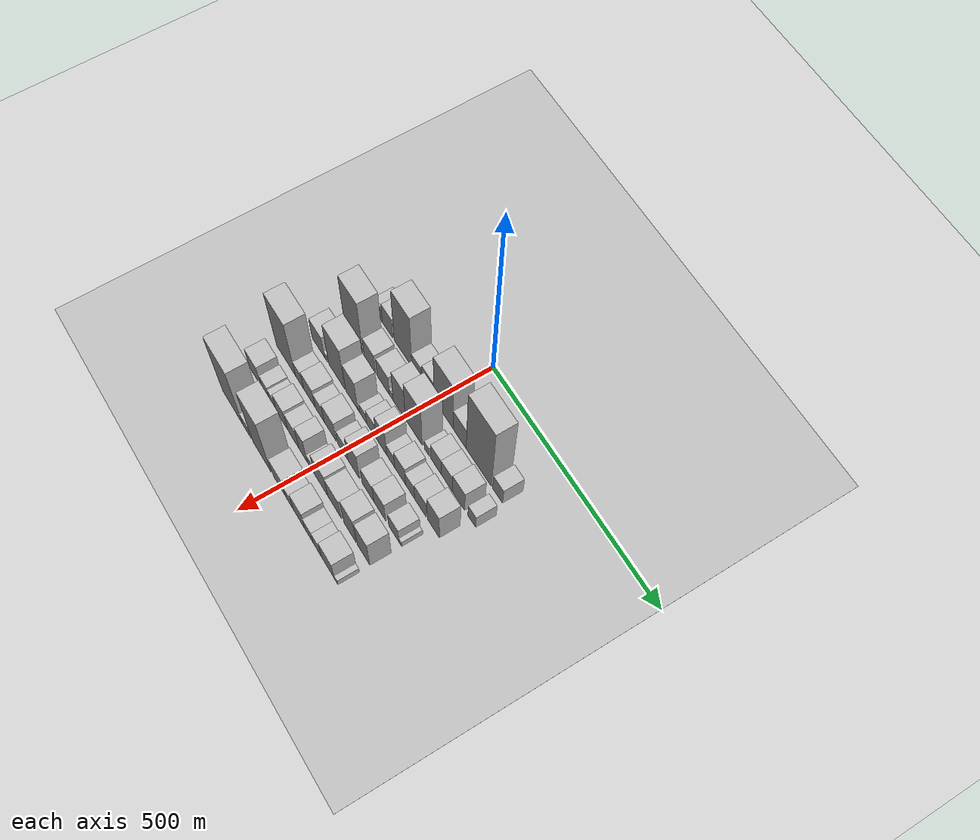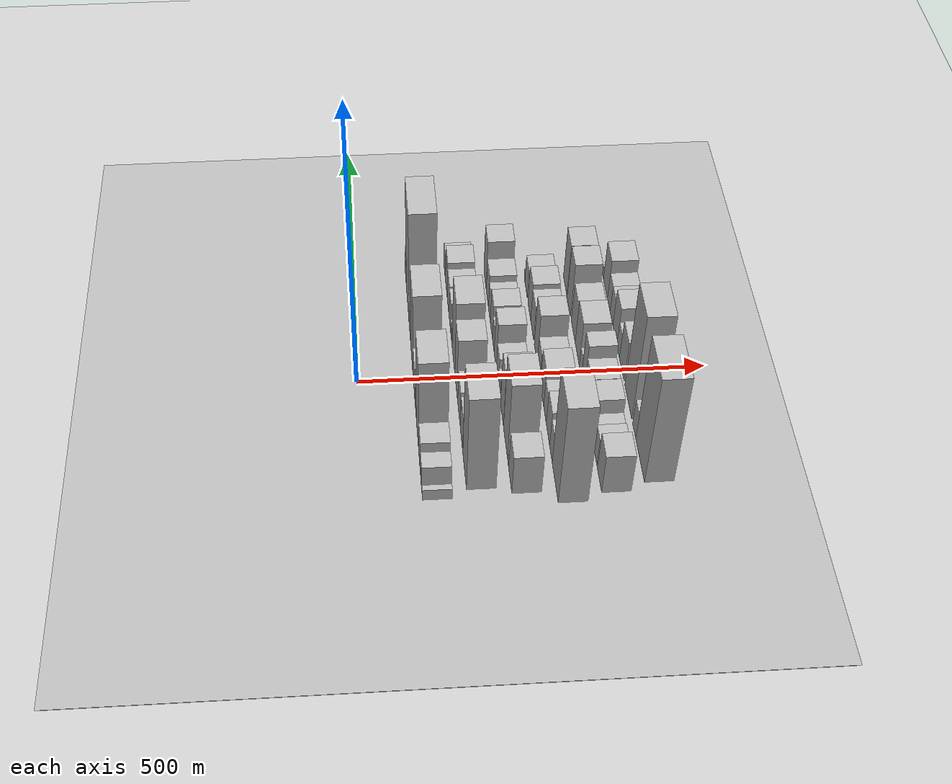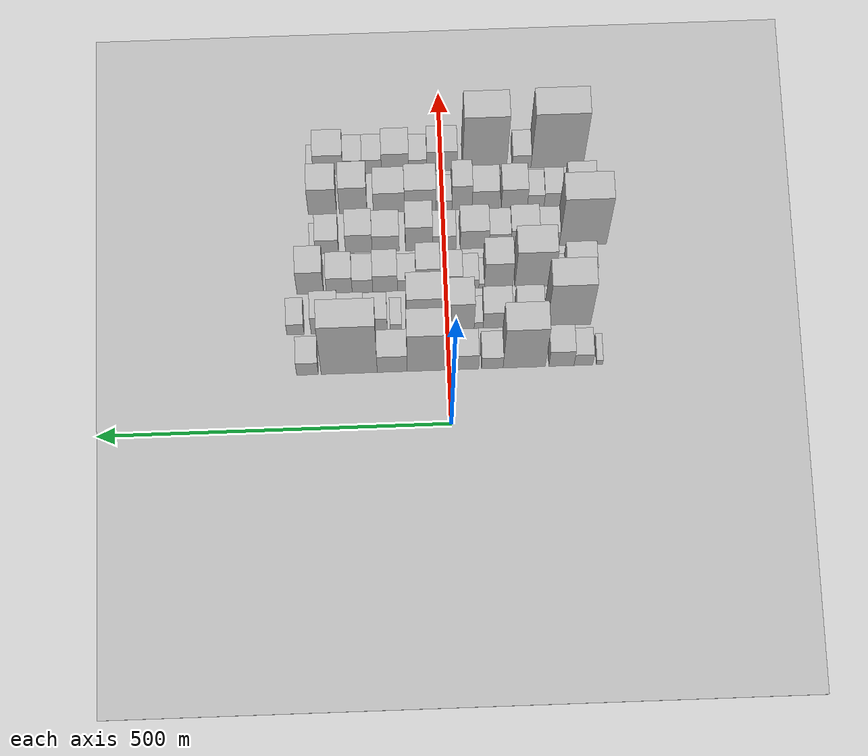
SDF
<sdf version="1.6">
 <world name="default">
  <include><name>ground_plane_1</name><uri>model://HANNAS_ground_plane</uri></include>
  <include>
   <name>ground_plane_2</name>
   <uri>model://HANNAS_ground_plane</uri>
   <pose>100 0 0  0 0 0</pose>
  </include>
  <model name="building_23">
   <static>1</static>
   <pose>100.0000 -211.9907 0 0.000000 0.000000 0.000000</pose>
   <link name="link">
    <pose>0 0 10.50 0 0 0</pose>
    <collision name="collision"><geometry><box><size>40.0000 9.0143 21.0000</size></box></geometry></collision>
    <visual name="visual">
     <cast_shadows>0</cast_shadows>
     <geometry><box><size>40.0000 9.0143 21.0000</size></box></geometry>
     <material>
      <script>
       <uri>model://HANNAS_wall/materials/scripts</uri>
       <uri>model://HANNAS_wall/materials/textures</uri>
       <name>vrc/HANNAS_wall</name>
      </script>
     </material>
    </visual>
   </link>
  </model>
  <model name="building_24">
   <static>1</static>
   <pose>100.0000 -189.1800 0 0.000000 0.000000 0.000000</pose>
   <link name="link">
    <pose>0 0 25.50 0 0 0</pose>
    <collision name="collision"><geometry><box><size>40.0000 26.6072 51.0000</size></box></geometry></collision>
    <visual name="visual">
     <cast_shadows>0</cast_shadows>
     <geometry><box><size>40.0000 26.6072 51.0000</size></box></geometry>
     <material>
      <script>
       <uri>model://HANNAS_wall/materials/scripts</uri>
       <uri>model://HANNAS_wall/materials/textures</uri>
       <name>vrc/HANNAS_wall</name>
      </script>
     </material>
    </visual>
   </link>
  </model>
  <model name="building_25">
   <static>1</static>
   <pose>100.0000 -158.0435 0 0.000000 0.000000 0.000000</pose>
   <link name="link">
    <pose>0 0 34.50 0 0 0</pose>
    <collision name="collision"><geometry><box><size>40.0000 35.6658 69.0000</size></box></geometry></collision>
    <visual name="visual">
     <cast_shadows>0</cast_shadows>
     <geometry><box><size>40.0000 35.6658 69.0000</size></box></geometry>
     <material>
      <script>
       <uri>model://HANNAS_wall/materials/scripts</uri>
       <uri>model://HANNAS_wall/materials/textures</uri>
       <name>vrc/HANNAS_wall</name>
      </script>
     </material>
    </visual>
   </link>
  </model>
  <model name="building_26">
   <static>1</static>
   <pose>100.0000 -105.2932 0 0.000000 0.000000 0.000000</pose>
   <link name="link">
    <pose>0 0 90.00 0 0 0</pose>
    <collision name="collision"><geometry><box><size>40.0000 59.8347 180.0000</size></box></geometry></collision>
    <visual name="visual">
     <cast_shadows>0</cast_shadows>
     <geometry><box><size>40.0000 59.8347 180.0000</size></box></geometry>
     <material>
      <script>
       <uri>model://HANNAS_wall/materials/scripts</uri>
       <uri>model://HANNAS_wall/materials/textures</uri>
       <name>vrc/HANNAS_wall</name>
      </script>
     </material>
    </visual>
   </link>
  </model>
  <model name="building_27">
   <static>1</static>
   <pose>100.0000 -60.1227 0 0.000000 0.000000 0.000000</pose>
   <link name="link">
    <pose>0 0 25.50 0 0 0</pose>
    <collision name="collision"><geometry><box><size>40.0000 30.5063 51.0000</size></box></geometry></collision>
    <visual name="visual">
     <cast_shadows>0</cast_shadows>
     <geometry><box><size>40.0000 30.5063 51.0000</size></box></geometry>
     <material>
      <script>
       <uri>model://HANNAS_wall/materials/scripts</uri>
       <uri>model://HANNAS_wall/materials/textures</uri>
       <name>vrc/HANNAS_wall</name>
      </script>
     </material>
    </visual>
   </link>
  </model>
  <model name="building_28">
   <static>1</static>
   <pose>100.0000 -21.3664 0 0.000000 0.000000 0.000000</pose>
   <link name="link">
    <pose>0 0 33.00 0 0 0</pose>
    <collision name="collision"><geometry><box><size>40.0000 39.0064 66.0000</size></box></geometry></collision>
    <visual name="visual">
     <cast_shadows>0</cast_shadows>
     <geometry><box><size>40.0000 39.0064 66.0000</size></box></geometry>
     <material>
      <script>
       <uri>model://HANNAS_wall/materials/scripts</uri>
       <uri>model://HANNAS_wall/materials/textures</uri>
       <name>vrc/HANNAS_wall</name>
      </script>
     </material>
    </visual>
   </link>
  </model>
  <model name="building_29">
   <static>1</static>
   <pose>100.0000 29.2411 0 0.000000 0.000000 0.000000</pose>
   <link name="link">
    <pose>0 0 84.00 0 0 0</pose>
    <collision name="collision"><geometry><box><size>40.0000 62.2086 168.0000</size></box></geometry></collision>
    <visual name="visual">
     <cast_shadows>0</cast_shadows>
     <geometry><box><size>40.0000 62.2086 168.0000</size></box></geometry>
     <material>
      <script>
       <uri>model://HANNAS_wall/materials/scripts</uri>
       <uri>model://HANNAS_wall/materials/textures</uri>
       <name>vrc/HANNAS_wall</name>
      </script>
     </material>
    </visual>
   </link>
  </model>
  <model name="building_30">
   <static>1</static>
   <pose>100.0000 81.5570 0 0.000000 0.000000 0.000000</pose>
   <link name="link">
    <pose>0 0 37.50 0 0 0</pose>
    <collision name="collision"><geometry><box><size>40.0000 42.4233 75.0000</size></box></geometry></collision>
    <visual name="visual">
     <cast_shadows>0</cast_shadows>
     <geometry><box><size>40.0000 42.4233 75.0000</size></box></geometry>
     <material>
      <script>
       <uri>model://HANNAS_wall/materials/scripts</uri>
       <uri>model://HANNAS_wall/materials/textures</uri>
       <name>vrc/HANNAS_wall</name>
      </script>
     </material>
    </visual>
   </link>
  </model>
  <model name="building_31">
   <static>1</static>
   <pose>100.0000 142.4309 0 0.000000 0.000000 0.000000</pose>
   <link name="link">
    <pose>0 0 111.00 0 0 0</pose>
    <collision name="collision"><geometry><box><size>40.0000 79.3245 222.0000</size></box></geometry></collision>
    <visual name="visual">
     <cast_shadows>0</cast_shadows>
     <geometry><box><size>40.0000 79.3245 222.0000</size></box></geometry>
     <material>
      <script>
       <uri>model://HANNAS_wall/materials/scripts</uri>
       <uri>model://HANNAS_wall/materials/textures</uri>
       <name>vrc/HANNAS_wall</name>
      </script>
     </material>
    </visual>
   </link>
  </model>
  <model name="building_32">
   <static>1</static>
   <pose>100.0000 201.3452 0 0.000000 0.000000 0.000000</pose>
   <link name="link">
    <pose>0 0 28.50 0 0 0</pose>
    <collision name="collision"><geometry><box><size>40.0000 30.5040 57.0000</size></box></geometry></collision>
    <visual name="visual">
     <cast_shadows>0</cast_shadows>
     <geometry><box><size>40.0000 30.5040 57.0000</size></box></geometry>
     <material>
      <script>
       <uri>model://HANNAS_wall/materials/scripts</uri>
       <uri>model://HANNAS_wall/materials/textures</uri>
       <name>vrc/HANNAS_wall</name>
      </script>
     </material>
    </visual>
   </link>
  </model>
  <model name="building_75">
   <static>1</static>
   <pose>160.0000 -171.7426 0 0.000000 0.000000 0.000000</pose>
   <link name="link">
    <pose>0 0 91.50 0 0 0</pose>
    <collision name="collision"><geometry><box><size>40.0000 61.8753 183.0000</size></box></geometry></collision>
    <visual name="visual">
     <cast_shadows>0</cast_shadows>
     <geometry><box><size>40.0000 61.8753 183.0000</size></box></geometry>
     <material>
      <script>
       <uri>model://HANNAS_wall/materials/scripts</uri>
       <uri>model://HANNAS_wall/materials/textures</uri>
       <name>vrc/HANNAS_wall</name>
      </script>
     </material>
    </visual>
   </link>
  </model>
  <model name="building_76">
   <static>1</static>
   <pose>160.0000 -116.3303 0 0.000000 0.000000 0.000000</pose>
   <link name="link">
    <pose>0 0 34.50 0 0 0</pose>
    <collision name="collision"><geometry><box><size>40.0000 38.9494 69.0000</size></box></geometry></collision>
    <visual name="visual">
     <cast_shadows>0</cast_shadows>
     <geometry><box><size>40.0000 38.9494 69.0000</size></box></geometry>
     <material>
      <script>
       <uri>model://HANNAS_wall/materials/scripts</uri>
       <uri>model://HANNAS_wall/materials/textures</uri>
       <name>vrc/HANNAS_wall</name>
      </script>
     </material>
    </visual>
   </link>
  </model>
  <model name="building_77">
   <static>1</static>
   <pose>160.0000 -70.2654 0 0.000000 0.000000 0.000000</pose>
   <link name="link">
    <pose>0 0 34.50 0 0 0</pose>
    <collision name="collision"><geometry><box><size>40.0000 41.1803 69.0000</size></box></geometry></collision>
    <visual name="visual">
     <cast_shadows>0</cast_shadows>
     <geometry><box><size>40.0000 41.1803 69.0000</size></box></geometry>
     <material>
      <script>
       <uri>model://HANNAS_wall/materials/scripts</uri>
       <uri>model://HANNAS_wall/materials/textures</uri>
       <name>vrc/HANNAS_wall</name>
      </script>
     </material>
    </visual>
   </link>
  </model>
  <model name="building_78">
   <static>1</static>
   <pose>160.0000 -43.2886 0 0.000000 0.000000 0.000000</pose>
   <link name="link">
    <pose>0 0 13.50 0 0 0</pose>
    <collision name="collision"><geometry><box><size>40.0000 12.7735 27.0000</size></box></geometry></collision>
    <visual name="visual">
     <cast_shadows>0</cast_shadows>
     <geometry><box><size>40.0000 12.7735 27.0000</size></box></geometry>
     <material>
      <script>
       <uri>model://HANNAS_wall/materials/scripts</uri>
       <uri>model://HANNAS_wall/materials/textures</uri>
       <name>vrc/HANNAS_wall</name>
      </script>
     </material>
    </visual>
   </link>
  </model>
  <model name="building_79">
   <static>1</static>
   <pose>160.0000 -16.5319 0 0.000000 0.000000 0.000000</pose>
   <link name="link">
    <pose>0 0 57.00 0 0 0</pose>
    <collision name="collision"><geometry><box><size>40.0000 40.7398 114.0000</size></box></geometry></collision>
    <visual name="visual">
     <cast_shadows>0</cast_shadows>
     <geometry><box><size>40.0000 40.7398 114.0000</size></box></geometry>
     <material>
      <script>
       <uri>model://HANNAS_wall/materials/scripts</uri>
       <uri>model://HANNAS_wall/materials/textures</uri>
       <name>vrc/HANNAS_wall</name>
      </script>
     </material>
    </visual>
   </link>
  </model>
  <model name="building_80">
   <static>1</static>
   <pose>160.0000 31.4067 0 0.000000 0.000000 0.000000</pose>
   <link name="link">
    <pose>0 0 72.00 0 0 0</pose>
    <collision name="collision"><geometry><box><size>40.0000 55.1375 144.0000</size></box></geometry></collision>
    <visual name="visual">
     <cast_shadows>0</cast_shadows>
     <geometry><box><size>40.0000 55.1375 144.0000</size></box></geometry>
     <material>
      <script>
       <uri>model://HANNAS_wall/materials/scripts</uri>
       <uri>model://HANNAS_wall/materials/textures</uri>
       <name>vrc/HANNAS_wall</name>
      </script>
     </material>
    </visual>
   </link>
  </model>
  <model name="building_81">
   <static>1</static>
   <pose>160.0000 74.2424 0 0.000000 0.000000 0.000000</pose>
   <link name="link">
    <pose>0 0 16.50 0 0 0</pose>
    <collision name="collision"><geometry><box><size>40.0000 16.5340 33.0000</size></box></geometry></collision>
    <visual name="visual">
     <cast_shadows>0</cast_shadows>
     <geometry><box><size>40.0000 16.5340 33.0000</size></box></geometry>
     <material>
      <script>
       <uri>model://HANNAS_wall/materials/scripts</uri>
       <uri>model://HANNAS_wall/materials/textures</uri>
       <name>vrc/HANNAS_wall</name>
      </script>
     </material>
    </visual>
   </link>
  </model>
  <model name="building_82">
   <static>1</static>
   <pose>160.0000 103.2470 0 0.000000 0.000000 0.000000</pose>
   <link name="link">
    <pose>0 0 30.00 0 0 0</pose>
    <collision name="collision"><geometry><box><size>40.0000 33.4752 60.0000</size></box></geometry></collision>
    <visual name="visual">
     <cast_shadows>0</cast_shadows>
     <geometry><box><size>40.0000 33.4752 60.0000</size></box></geometry>
     <material>
      <script>
       <uri>model://HANNAS_wall/materials/scripts</uri>
       <uri>model://HANNAS_wall/materials/textures</uri>
       <name>vrc/HANNAS_wall</name>
      </script>
     </material>
    </visual>
   </link>
  </model>
  <model name="building_83">
   <static>1</static>
   <pose>160.0000 138.2961 0 0.000000 0.000000 0.000000</pose>
   <link name="link">
    <pose>0 0 31.50 0 0 0</pose>
    <collision name="collision"><geometry><box><size>40.0000 36.6229 63.0000</size></box></geometry></collision>
    <visual name="visual">
     <cast_shadows>0</cast_shadows>
     <geometry><box><size>40.0000 36.6229 63.0000</size></box></geometry>
     <material>
      <script>
       <uri>model://HANNAS_wall/materials/scripts</uri>
       <uri>model://HANNAS_wall/materials/textures</uri>
       <name>vrc/HANNAS_wall</name>
      </script>
     </material>
    </visual>
   </link>
  </model>
  <model name="building_84">
   <static>1</static>
   <pose>160.0000 175.6414 0 0.000000 0.000000 0.000000</pose>
   <link name="link">
    <pose>0 0 37.50 0 0 0</pose>
    <collision name="collision"><geometry><box><size>40.0000 38.0677 75.0000</size></box></geometry></collision>
    <visual name="visual">
     <cast_shadows>0</cast_shadows>
     <geometry><box><size>40.0000 38.0677 75.0000</size></box></geometry>
     <material>
      <script>
       <uri>model://HANNAS_wall/materials/scripts</uri>
       <uri>model://HANNAS_wall/materials/textures</uri>
       <name>vrc/HANNAS_wall</name>
      </script>
     </material>
    </visual>
   </link>
  </model>
  <model name="building_85">
   <static>1</static>
   <pose>160.0000 216.8827 0 0.000000 0.000000 0.000000</pose>
   <link name="link">
    <pose>0 0 24.00 0 0 0</pose>
    <collision name="collision"><geometry><box><size>40.0000 24.4150 48.0000</size></box></geometry></collision>
    <visual name="visual">
     <cast_shadows>0</cast_shadows>
     <geometry><box><size>40.0000 24.4150 48.0000</size></box></geometry>
     <material>
      <script>
       <uri>model://HANNAS_wall/materials/scripts</uri>
       <uri>model://HANNAS_wall/materials/textures</uri>
       <name>vrc/HANNAS_wall</name>
      </script>
     </material>
    </visual>
   </link>
  </model>
  <model name="building_130">
   <static>1</static>
   <pose>220.0000 -191.2444 0 0.000000 0.000000 0.000000</pose>
   <link name="link">
    <pose>0 0 37.50 0 0 0</pose>
    <collision name="collision"><geometry><box><size>40.0000 43.1221 75.0000</size></box></geometry></collision>
    <visual name="visual">
     <cast_shadows>0</cast_shadows>
     <geometry><box><size>40.0000 43.1221 75.0000</size></box></geometry>
     <material>
      <script>
       <uri>model://HANNAS_wall/materials/scripts</uri>
       <uri>model://HANNAS_wall/materials/textures</uri>
       <name>vrc/HANNAS_wall</name>
      </script>
     </material>
    </visual>
   </link>
  </model>
  <model name="building_131">
   <static>1</static>
   <pose>220.0000 -164.2995 0 0.000000 0.000000 0.000000</pose>
   <link name="link">
    <pose>0 0 12.00 0 0 0</pose>
    <collision name="collision"><geometry><box><size>40.0000 10.7676 24.0000</size></box></geometry></collision>
    <visual name="visual">
     <cast_shadows>0</cast_shadows>
     <geometry><box><size>40.0000 10.7676 24.0000</size></box></geometry>
     <material>
      <script>
       <uri>model://HANNAS_wall/materials/scripts</uri>
       <uri>model://HANNAS_wall/materials/textures</uri>
       <name>vrc/HANNAS_wall</name>
      </script>
     </material>
    </visual>
   </link>
  </model>
  <model name="building_132">
   <static>1</static>
   <pose>220.0000 -125.7741 0 0.000000 0.000000 0.000000</pose>
   <link name="link">
    <pose>0 0 75.00 0 0 0</pose>
    <collision name="collision"><geometry><box><size>40.0000 56.2834 150.0000</size></box></geometry></collision>
    <visual name="visual">
     <cast_shadows>0</cast_shadows>
     <geometry><box><size>40.0000 56.2834 150.0000</size></box></geometry>
     <material>
      <script>
       <uri>model://HANNAS_wall/materials/scripts</uri>
       <uri>model://HANNAS_wall/materials/textures</uri>
       <name>vrc/HANNAS_wall</name>
      </script>
     </material>
    </visual>
   </link>
  </model>
  <model name="building_133">
   <static>1</static>
   <pose>220.0000 -74.2820 0 0.000000 0.000000 0.000000</pose>
   <link name="link">
    <pose>0 0 52.50 0 0 0</pose>
    <collision name="collision"><geometry><box><size>40.0000 40.7007 105.0000</size></box></geometry></collision>
    <visual name="visual">
     <cast_shadows>0</cast_shadows>
     <geometry><box><size>40.0000 40.7007 105.0000</size></box></geometry>
     <material>
      <script>
       <uri>model://HANNAS_wall/materials/scripts</uri>
       <uri>model://HANNAS_wall/materials/textures</uri>
       <name>vrc/HANNAS_wall</name>
      </script>
     </material>
    </visual>
   </link>
  </model>
  <model name="building_134">
   <static>1</static>
   <pose>220.0000 -50.0103 0 0.000000 0.000000 0.000000</pose>
   <link name="link">
    <pose>0 0 9.00 0 0 0</pose>
    <collision name="collision"><geometry><box><size>40.0000 7.8428 18.0000</size></box></geometry></collision>
    <visual name="visual">
     <cast_shadows>0</cast_shadows>
     <geometry><box><size>40.0000 7.8428 18.0000</size></box></geometry>
     <material>
      <script>
       <uri>model://HANNAS_wall/materials/scripts</uri>
       <uri>model://HANNAS_wall/materials/textures</uri>
       <name>vrc/HANNAS_wall</name>
      </script>
     </material>
    </visual>
   </link>
  </model>
  <model name="building_135">
   <static>1</static>
   <pose>220.0000 -34.4745 0 0.000000 0.000000 0.000000</pose>
   <link name="link">
    <pose>0 0 19.50 0 0 0</pose>
    <collision name="collision"><geometry><box><size>40.0000 23.2288 39.0000</size></box></geometry></collision>
    <visual name="visual">
     <cast_shadows>0</cast_shadows>
     <geometry><box><size>40.0000 23.2288 39.0000</size></box></geometry>
     <material>
      <script>
       <uri>model://HANNAS_wall/materials/scripts</uri>
       <uri>model://HANNAS_wall/materials/textures</uri>
       <name>vrc/HANNAS_wall</name>
      </script>
     </material>
    </visual>
   </link>
  </model>
  <model name="building_136">
   <static>1</static>
   <pose>220.0000 -6.7000 0 0.000000 0.000000 0.000000</pose>
   <link name="link">
    <pose>0 0 28.50 0 0 0</pose>
    <collision name="collision"><geometry><box><size>40.0000 32.3200 57.0000</size></box></geometry></collision>
    <visual name="visual">
     <cast_shadows>0</cast_shadows>
     <geometry><box><size>40.0000 32.3200 57.0000</size></box></geometry>
     <material>
      <script>
       <uri>model://HANNAS_wall/materials/scripts</uri>
       <uri>model://HANNAS_wall/materials/textures</uri>
       <name>vrc/HANNAS_wall</name>
      </script>
     </material>
    </visual>
   </link>
  </model>
  <model name="building_137">
   <static>1</static>
   <pose>220.0000 26.6007 0 0.000000 0.000000 0.000000</pose>
   <link name="link">
    <pose>0 0 46.50 0 0 0</pose>
    <collision name="collision"><geometry><box><size>40.0000 34.2815 93.0000</size></box></geometry></collision>
    <visual name="visual">
     <cast_shadows>0</cast_shadows>
     <geometry><box><size>40.0000 34.2815 93.0000</size></box></geometry>
     <material>
      <script>
       <uri>model://HANNAS_wall/materials/scripts</uri>
       <uri>model://HANNAS_wall/materials/textures</uri>
       <name>vrc/HANNAS_wall</name>
      </script>
     </material>
    </visual>
   </link>
  </model>
  <model name="building_138">
   <static>1</static>
   <pose>220.0000 56.8906 0 0.000000 0.000000 0.000000</pose>
   <link name="link">
    <pose>0 0 24.00 0 0 0</pose>
    <collision name="collision"><geometry><box><size>40.0000 26.2984 48.0000</size></box></geometry></collision>
    <visual name="visual">
     <cast_shadows>0</cast_shadows>
     <geometry><box><size>40.0000 26.2984 48.0000</size></box></geometry>
     <material>
      <script>
       <uri>model://HANNAS_wall/materials/scripts</uri>
       <uri>model://HANNAS_wall/materials/textures</uri>
       <name>vrc/HANNAS_wall</name>
      </script>
     </material>
    </visual>
   </link>
  </model>
  <model name="building_139">
   <static>1</static>
   <pose>220.0000 87.6711 0 0.000000 0.000000 0.000000</pose>
   <link name="link">
    <pose>0 0 34.50 0 0 0</pose>
    <collision name="collision"><geometry><box><size>40.0000 35.2625 69.0000</size></box></geometry></collision>
    <visual name="visual">
     <cast_shadows>0</cast_shadows>
     <geometry><box><size>40.0000 35.2625 69.0000</size></box></geometry>
     <material>
      <script>
       <uri>model://HANNAS_wall/materials/scripts</uri>
       <uri>model://HANNAS_wall/materials/textures</uri>
       <name>vrc/HANNAS_wall</name>
      </script>
     </material>
    </visual>
   </link>
  </model>
  <model name="building_140">
   <static>1</static>
   <pose>220.0000 120.0035 0 0.000000 0.000000 0.000000</pose>
   <link name="link">
    <pose>0 0 27.00 0 0 0</pose>
    <collision name="collision"><geometry><box><size>40.0000 29.4024 54.0000</size></box></geometry></collision>
    <visual name="visual">
     <cast_shadows>0</cast_shadows>
     <geometry><box><size>40.0000 29.4024 54.0000</size></box></geometry>
     <material>
      <script>
       <uri>model://HANNAS_wall/materials/scripts</uri>
       <uri>model://HANNAS_wall/materials/textures</uri>
       <name>vrc/HANNAS_wall</name>
      </script>
     </material>
    </visual>
   </link>
  </model>
  <model name="building_141">
   <static>1</static>
   <pose>220.0000 153.0746 0 0.000000 0.000000 0.000000</pose>
   <link name="link">
    <pose>0 0 33.00 0 0 0</pose>
    <collision name="collision"><geometry><box><size>40.0000 36.7398 66.0000</size></box></geometry></collision>
    <visual name="visual">
     <cast_shadows>0</cast_shadows>
     <geometry><box><size>40.0000 36.7398 66.0000</size></box></geometry>
     <material>
      <script>
       <uri>model://HANNAS_wall/materials/scripts</uri>
       <uri>model://HANNAS_wall/materials/textures</uri>
       <name>vrc/HANNAS_wall</name>
      </script>
     </material>
    </visual>
   </link>
  </model>
  <model name="building_142">
   <static>1</static>
   <pose>220.0000 194.3875 0 0.000000 0.000000 0.000000</pose>
   <link name="link">
    <pose>0 0 48.00 0 0 0</pose>
    <collision name="collision"><geometry><box><size>40.0000 37.8859 96.0000</size></box></geometry></collision>
    <visual name="visual">
     <cast_shadows>0</cast_shadows>
     <geometry><box><size>40.0000 37.8859 96.0000</size></box></geometry>
     <material>
      <script>
       <uri>model://HANNAS_wall/materials/scripts</uri>
       <uri>model://HANNAS_wall/materials/textures</uri>
       <name>vrc/HANNAS_wall</name>
      </script>
     </material>
    </visual>
   </link>
  </model>
  <model name="building_182">
   <static>1</static>
   <pose>280.0000 -198.2186 0 0.000000 0.000000 0.000000</pose>
   <link name="link">
    <pose>0 0 96.00 0 0 0</pose>
    <collision name="collision"><geometry><box><size>40.0000 67.8288 192.0000</size></box></geometry></collision>
    <visual name="visual">
     <cast_shadows>0</cast_shadows>
     <geometry><box><size>40.0000 67.8288 192.0000</size></box></geometry>
     <material>
      <script>
       <uri>model://HANNAS_wall/materials/scripts</uri>
       <uri>model://HANNAS_wall/materials/textures</uri>
       <name>vrc/HANNAS_wall</name>
      </script>
     </material>
    </visual>
   </link>
  </model>
  <model name="building_183">
   <static>1</static>
   <pose>280.0000 -149.5653 0 0.000000 0.000000 0.000000</pose>
   <link name="link">
    <pose>0 0 28.50 0 0 0</pose>
    <collision name="collision"><geometry><box><size>40.0000 29.4779 57.0000</size></box></geometry></collision>
    <visual name="visual">
     <cast_shadows>0</cast_shadows>
     <geometry><box><size>40.0000 29.4779 57.0000</size></box></geometry>
     <material>
      <script>
       <uri>model://HANNAS_wall/materials/scripts</uri>
       <uri>model://HANNAS_wall/materials/textures</uri>
       <name>vrc/HANNAS_wall</name>
      </script>
     </material>
    </visual>
   </link>
  </model>
  <model name="building_184">
   <static>1</static>
   <pose>280.0000 -114.5955 0 0.000000 0.000000 0.000000</pose>
   <link name="link">
    <pose>0 0 34.50 0 0 0</pose>
    <collision name="collision"><geometry><box><size>40.0000 40.4616 69.0000</size></box></geometry></collision>
    <visual name="visual">
     <cast_shadows>0</cast_shadows>
     <geometry><box><size>40.0000 40.4616 69.0000</size></box></geometry>
     <material>
      <script>
       <uri>model://HANNAS_wall/materials/scripts</uri>
       <uri>model://HANNAS_wall/materials/textures</uri>
       <name>vrc/HANNAS_wall</name>
      </script>
     </material>
    </visual>
   </link>
  </model>
  <model name="building_185">
   <static>1</static>
   <pose>280.0000 -78.7830 0 0.000000 0.000000 0.000000</pose>
   <link name="link">
    <pose>0 0 28.50 0 0 0</pose>
    <collision name="collision"><geometry><box><size>40.0000 31.1634 57.0000</size></box></geometry></collision>
    <visual name="visual">
     <cast_shadows>0</cast_shadows>
     <geometry><box><size>40.0000 31.1634 57.0000</size></box></geometry>
     <material>
      <script>
       <uri>model://HANNAS_wall/materials/scripts</uri>
       <uri>model://HANNAS_wall/materials/textures</uri>
       <name>vrc/HANNAS_wall</name>
      </script>
     </material>
    </visual>
   </link>
  </model>
  <model name="building_186">
   <static>1</static>
   <pose>280.0000 -42.5746 0 0.000000 0.000000 0.000000</pose>
   <link name="link">
    <pose>0 0 37.50 0 0 0</pose>
    <collision name="collision"><geometry><box><size>40.0000 41.2534 75.0000</size></box></geometry></collision>
    <visual name="visual">
     <cast_shadows>0</cast_shadows>
     <geometry><box><size>40.0000 41.2534 75.0000</size></box></geometry>
     <material>
      <script>
       <uri>model://HANNAS_wall/materials/scripts</uri>
       <uri>model://HANNAS_wall/materials/textures</uri>
       <name>vrc/HANNAS_wall</name>
      </script>
     </material>
    </visual>
   </link>
  </model>
  <model name="building_187">
   <static>1</static>
   <pose>280.0000 0.9164 0 0.000000 0.000000 0.000000</pose>
   <link name="link">
    <pose>0 0 28.50 0 0 0</pose>
    <collision name="collision"><geometry><box><size>40.0000 33.7286 57.0000</size></box></geometry></collision>
    <visual name="visual">
     <cast_shadows>0</cast_shadows>
     <geometry><box><size>40.0000 33.7286 57.0000</size></box></geometry>
     <material>
      <script>
       <uri>model://HANNAS_wall/materials/scripts</uri>
       <uri>model://HANNAS_wall/materials/textures</uri>
       <name>vrc/HANNAS_wall</name>
      </script>
     </material>
    </visual>
   </link>
  </model>
  <model name="building_188">
   <static>1</static>
   <pose>280.0000 37.1136 0 0.000000 0.000000 0.000000</pose>
   <link name="link">
    <pose>0 0 49.50 0 0 0</pose>
    <collision name="collision"><geometry><box><size>40.0000 38.6659 99.0000</size></box></geometry></collision>
    <visual name="visual">
     <cast_shadows>0</cast_shadows>
     <geometry><box><size>40.0000 38.6659 99.0000</size></box></geometry>
     <material>
      <script>
       <uri>model://HANNAS_wall/materials/scripts</uri>
       <uri>model://HANNAS_wall/materials/textures</uri>
       <name>vrc/HANNAS_wall</name>
      </script>
     </material>
    </visual>
   </link>
  </model>
  <model name="building_189">
   <static>1</static>
   <pose>280.0000 84.8839 0 0.000000 0.000000 0.000000</pose>
   <link name="link">
    <pose>0 0 33.00 0 0 0</pose>
    <collision name="collision"><geometry><box><size>40.0000 38.8745 66.0000</size></box></geometry></collision>
    <visual name="visual">
     <cast_shadows>0</cast_shadows>
     <geometry><box><size>40.0000 38.8745 66.0000</size></box></geometry>
     <material>
      <script>
       <uri>model://HANNAS_wall/materials/scripts</uri>
       <uri>model://HANNAS_wall/materials/textures</uri>
       <name>vrc/HANNAS_wall</name>
      </script>
     </material>
    </visual>
   </link>
  </model>
  <model name="building_190">
   <static>1</static>
   <pose>280.0000 123.3718 0 0.000000 0.000000 0.000000</pose>
   <link name="link">
    <pose>0 0 37.50 0 0 0</pose>
    <collision name="collision"><geometry><box><size>40.0000 38.1014 75.0000</size></box></geometry></collision>
    <visual name="visual">
     <cast_shadows>0</cast_shadows>
     <geometry><box><size>40.0000 38.1014 75.0000</size></box></geometry>
     <material>
      <script>
       <uri>model://HANNAS_wall/materials/scripts</uri>
       <uri>model://HANNAS_wall/materials/textures</uri>
       <name>vrc/HANNAS_wall</name>
      </script>
     </material>
    </visual>
   </link>
  </model>
  <model name="building_191">
   <static>1</static>
   <pose>280.0000 169.0224 0 0.000000 0.000000 0.000000</pose>
   <link name="link">
    <pose>0 0 28.50 0 0 0</pose>
    <collision name="collision"><geometry><box><size>40.0000 33.1997 57.0000</size></box></geometry></collision>
    <visual name="visual">
     <cast_shadows>0</cast_shadows>
     <geometry><box><size>40.0000 33.1997 57.0000</size></box></geometry>
     <material>
      <script>
       <uri>model://HANNAS_wall/materials/scripts</uri>
       <uri>model://HANNAS_wall/materials/textures</uri>
       <name>vrc/HANNAS_wall</name>
      </script>
     </material>
    </visual>
   </link>
  </model>
  <model name="building_192">
   <static>1</static>
   <pose>280.0000 189.8350 0 0.000000 0.000000 0.000000</pose>
   <link name="link">
    <pose>0 0 10.50 0 0 0</pose>
    <collision name="collision"><geometry><box><size>40.0000 8.4255 21.0000</size></box></geometry></collision>
    <visual name="visual">
     <cast_shadows>0</cast_shadows>
     <geometry><box><size>40.0000 8.4255 21.0000</size></box></geometry>
     <material>
      <script>
       <uri>model://HANNAS_wall/materials/scripts</uri>
       <uri>model://HANNAS_wall/materials/textures</uri>
       <name>vrc/HANNAS_wall</name>
      </script>
     </material>
    </visual>
   </link>
  </model>
  <model name="building_243">
   <static>1</static>
   <pose>340.0000 -198.2505 0 0.000000 0.000000 0.000000</pose>
   <link name="link">
    <pose>0 0 37.50 0 0 0</pose>
    <collision name="collision"><geometry><box><size>40.0000 41.0039 75.0000</size></box></geometry></collision>
    <visual name="visual">
     <cast_shadows>0</cast_shadows>
     <geometry><box><size>40.0000 41.0039 75.0000</size></box></geometry>
     <material>
      <script>
       <uri>model://HANNAS_wall/materials/scripts</uri>
       <uri>model://HANNAS_wall/materials/textures</uri>
       <name>vrc/HANNAS_wall</name>
      </script>
     </material>
    </visual>
   </link>
  </model>
  <model name="building_244">
   <static>1</static>
   <pose>340.0000 -159.0229 0 0.000000 0.000000 0.000000</pose>
   <link name="link">
    <pose>0 0 27.00 0 0 0</pose>
    <collision name="collision"><geometry><box><size>40.0000 27.4513 54.0000</size></box></geometry></collision>
    <visual name="visual">
     <cast_shadows>0</cast_shadows>
     <geometry><box><size>40.0000 27.4513 54.0000</size></box></geometry>
     <material>
      <script>
       <uri>model://HANNAS_wall/materials/scripts</uri>
       <uri>model://HANNAS_wall/materials/textures</uri>
       <name>vrc/HANNAS_wall</name>
      </script>
     </material>
    </visual>
   </link>
  </model>
  <model name="building_245">
   <static>1</static>
   <pose>340.0000 -133.2510 0 0.000000 0.000000 0.000000</pose>
   <link name="link">
    <pose>0 0 24.00 0 0 0</pose>
    <collision name="collision"><geometry><box><size>40.0000 24.0925 48.0000</size></box></geometry></collision>
    <visual name="visual">
     <cast_shadows>0</cast_shadows>
     <geometry><box><size>40.0000 24.0925 48.0000</size></box></geometry>
     <material>
      <script>
       <uri>model://HANNAS_wall/materials/scripts</uri>
       <uri>model://HANNAS_wall/materials/textures</uri>
       <name>vrc/HANNAS_wall</name>
      </script>
     </material>
    </visual>
   </link>
  </model>
  <model name="building_246">
   <static>1</static>
   <pose>340.0000 -102.4374 0 0.000000 0.000000 0.000000</pose>
   <link name="link">
    <pose>0 0 37.50 0 0 0</pose>
    <collision name="collision"><geometry><box><size>40.0000 37.5347 75.0000</size></box></geometry></collision>
    <visual name="visual">
     <cast_shadows>0</cast_shadows>
     <geometry><box><size>40.0000 37.5347 75.0000</size></box></geometry>
     <material>
      <script>
       <uri>model://HANNAS_wall/materials/scripts</uri>
       <uri>model://HANNAS_wall/materials/textures</uri>
       <name>vrc/HANNAS_wall</name>
      </script>
     </material>
    </visual>
   </link>
  </model>
  <model name="building_247">
   <static>1</static>
   <pose>340.0000 -61.0092 0 0.000000 0.000000 0.000000</pose>
   <link name="link">
    <pose>0 0 36.00 0 0 0</pose>
    <collision name="collision"><geometry><box><size>40.0000 39.3217 72.0000</size></box></geometry></collision>
    <visual name="visual">
     <cast_shadows>0</cast_shadows>
     <geometry><box><size>40.0000 39.3217 72.0000</size></box></geometry>
     <material>
      <script>
       <uri>model://HANNAS_wall/materials/scripts</uri>
       <uri>model://HANNAS_wall/materials/textures</uri>
       <name>vrc/HANNAS_wall</name>
      </script>
     </material>
    </visual>
   </link>
  </model>
  <model name="building_248">
   <static>1</static>
   <pose>340.0000 -26.8840 0 0.000000 0.000000 0.000000</pose>
   <link name="link">
    <pose>0 0 48.00 0 0 0</pose>
    <collision name="collision"><geometry><box><size>40.0000 28.9287 96.0000</size></box></geometry></collision>
    <visual name="visual">
     <cast_shadows>0</cast_shadows>
     <geometry><box><size>40.0000 28.9287 96.0000</size></box></geometry>
     <material>
      <script>
       <uri>model://HANNAS_wall/materials/scripts</uri>
       <uri>model://HANNAS_wall/materials/textures</uri>
       <name>vrc/HANNAS_wall</name>
      </script>
     </material>
    </visual>
   </link>
  </model>
  <model name="building_249">
   <static>1</static>
   <pose>340.0000 -0.9555 0 0.000000 0.000000 0.000000</pose>
   <link name="link">
    <pose>0 0 19.50 0 0 0</pose>
    <collision name="collision"><geometry><box><size>40.0000 22.9282 39.0000</size></box></geometry></collision>
    <visual name="visual">
     <cast_shadows>0</cast_shadows>
     <geometry><box><size>40.0000 22.9282 39.0000</size></box></geometry>
     <material>
      <script>
       <uri>model://HANNAS_wall/materials/scripts</uri>
       <uri>model://HANNAS_wall/materials/textures</uri>
       <name>vrc/HANNAS_wall</name>
      </script>
     </material>
    </visual>
   </link>
  </model>
  <model name="building_250">
   <static>1</static>
   <pose>340.0000 33.2668 0 0.000000 0.000000 0.000000</pose>
   <link name="link">
    <pose>0 0 43.50 0 0 0</pose>
    <collision name="collision"><geometry><box><size>40.0000 45.5164 87.0000</size></box></geometry></collision>
    <visual name="visual">
     <cast_shadows>0</cast_shadows>
     <geometry><box><size>40.0000 45.5164 87.0000</size></box></geometry>
     <material>
      <script>
       <uri>model://HANNAS_wall/materials/scripts</uri>
       <uri>model://HANNAS_wall/materials/textures</uri>
       <name>vrc/HANNAS_wall</name>
      </script>
     </material>
    </visual>
   </link>
  </model>
  <model name="building_251">
   <static>1</static>
   <pose>340.0000 78.4324 0 0.000000 0.000000 0.000000</pose>
   <link name="link">
    <pose>0 0 39.00 0 0 0</pose>
    <collision name="collision"><geometry><box><size>40.0000 44.8149 78.0000</size></box></geometry></collision>
    <visual name="visual">
     <cast_shadows>0</cast_shadows>
     <geometry><box><size>40.0000 44.8149 78.0000</size></box></geometry>
     <material>
      <script>
       <uri>model://HANNAS_wall/materials/scripts</uri>
       <uri>model://HANNAS_wall/materials/textures</uri>
       <name>vrc/HANNAS_wall</name>
      </script>
     </material>
    </visual>
   </link>
  </model>
  <model name="building_252">
   <static>1</static>
   <pose>340.0000 129.7323 0 0.000000 0.000000 0.000000</pose>
   <link name="link">
    <pose>0 0 52.50 0 0 0</pose>
    <collision name="collision"><geometry><box><size>40.0000 39.7849 105.0000</size></box></geometry></collision>
    <visual name="visual">
     <cast_shadows>0</cast_shadows>
     <geometry><box><size>40.0000 39.7849 105.0000</size></box></geometry>
     <material>
      <script>
       <uri>model://HANNAS_wall/materials/scripts</uri>
       <uri>model://HANNAS_wall/materials/textures</uri>
       <name>vrc/HANNAS_wall</name>
      </script>
     </material>
    </visual>
   </link>
  </model>
  <model name="building_253">
   <static>1</static>
   <pose>340.0000 173.9885 0 0.000000 0.000000 0.000000</pose>
   <link name="link">
    <pose>0 0 51.00 0 0 0</pose>
    <collision name="collision"><geometry><box><size>40.0000 40.7275 102.0000</size></box></geometry></collision>
    <visual name="visual">
     <cast_shadows>0</cast_shadows>
     <geometry><box><size>40.0000 40.7275 102.0000</size></box></geometry>
     <material>
      <script>
       <uri>model://HANNAS_wall/materials/scripts</uri>
       <uri>model://HANNAS_wall/materials/textures</uri>
       <name>vrc/HANNAS_wall</name>
      </script>
     </material>
    </visual>
   </link>
  </model>
  <model name="building_298">
   <static>1</static>
   <pose>400.0000 -167.2326 0 0.000000 0.000000 0.000000</pose>
   <link name="link">
    <pose>0 0 103.50 0 0 0</pose>
    <collision name="collision"><geometry><box><size>40.0000 75.9558 207.0000</size></box></geometry></collision>
    <visual name="visual">
     <cast_shadows>0</cast_shadows>
     <geometry><box><size>40.0000 75.9558 207.0000</size></box></geometry>
     <material>
      <script>
       <uri>model://HANNAS_wall/materials/scripts</uri>
       <uri>model://HANNAS_wall/materials/textures</uri>
       <name>vrc/HANNAS_wall</name>
      </script>
     </material>
    </visual>
   </link>
  </model>
  <model name="building_299">
   <static>1</static>
   <pose>400.0000 -115.6332 0 0.000000 0.000000 0.000000</pose>
   <link name="link">
    <pose>0 0 25.50 0 0 0</pose>
    <collision name="collision"><geometry><box><size>40.0000 27.2431 51.0000</size></box></geometry></collision>
    <visual name="visual">
     <cast_shadows>0</cast_shadows>
     <geometry><box><size>40.0000 27.2431 51.0000</size></box></geometry>
     <material>
      <script>
       <uri>model://HANNAS_wall/materials/scripts</uri>
       <uri>model://HANNAS_wall/materials/textures</uri>
       <name>vrc/HANNAS_wall</name>
      </script>
     </material>
    </visual>
   </link>
  </model>
  <model name="building_300">
   <static>1</static>
   <pose>400.0000 -62.0757 0 0.000000 0.000000 0.000000</pose>
   <link name="link">
    <pose>0 0 102.00 0 0 0</pose>
    <collision name="collision"><geometry><box><size>40.0000 63.8719 204.0000</size></box></geometry></collision>
    <visual name="visual">
     <cast_shadows>0</cast_shadows>
     <geometry><box><size>40.0000 63.8719 204.0000</size></box></geometry>
     <material>
      <script>
       <uri>model://HANNAS_wall/materials/scripts</uri>
       <uri>model://HANNAS_wall/materials/textures</uri>
       <name>vrc/HANNAS_wall</name>
      </script>
     </material>
    </visual>
   </link>
  </model>
  <model name="building_301">
   <static>1</static>
   <pose>400.0000 -0.2665 0 0.000000 0.000000 0.000000</pose>
   <link name="link">
    <pose>0 0 39.00 0 0 0</pose>
    <collision name="collision"><geometry><box><size>40.0000 43.7464 78.0000</size></box></geometry></collision>
    <visual name="visual">
     <cast_shadows>0</cast_shadows>
     <geometry><box><size>40.0000 43.7464 78.0000</size></box></geometry>
     <material>
      <script>
       <uri>model://HANNAS_wall/materials/scripts</uri>
       <uri>model://HANNAS_wall/materials/textures</uri>
       <name>vrc/HANNAS_wall</name>
      </script>
     </material>
    </visual>
   </link>
  </model>
  <model name="building_302">
   <static>1</static>
   <pose>400.0000 34.6259 0 0.000000 0.000000 0.000000</pose>
   <link name="link">
    <pose>0 0 24.00 0 0 0</pose>
    <collision name="collision"><geometry><box><size>40.0000 26.0384 48.0000</size></box></geometry></collision>
    <visual name="visual">
     <cast_shadows>0</cast_shadows>
     <geometry><box><size>40.0000 26.0384 48.0000</size></box></geometry>
     <material>
      <script>
       <uri>model://HANNAS_wall/materials/scripts</uri>
       <uri>model://HANNAS_wall/materials/textures</uri>
       <name>vrc/HANNAS_wall</name>
      </script>
     </material>
    </visual>
   </link>
  </model>
  <model name="building_303">
   <static>1</static>
   <pose>400.0000 67.3976 0 0.000000 0.000000 0.000000</pose>
   <link name="link">
    <pose>0 0 37.50 0 0 0</pose>
    <collision name="collision"><geometry><box><size>40.0000 39.5050 75.0000</size></box></geometry></collision>
    <visual name="visual">
     <cast_shadows>0</cast_shadows>
     <geometry><box><size>40.0000 39.5050 75.0000</size></box></geometry>
     <material>
      <script>
       <uri>model://HANNAS_wall/materials/scripts</uri>
       <uri>model://HANNAS_wall/materials/textures</uri>
       <name>vrc/HANNAS_wall</name>
      </script>
     </material>
    </visual>
   </link>
  </model>
  <model name="building_304">
   <static>1</static>
   <pose>400.0000 101.1536 0 0.000000 0.000000 0.000000</pose>
   <link name="link">
    <pose>0 0 27.00 0 0 0</pose>
    <collision name="collision"><geometry><box><size>40.0000 28.0070 54.0000</size></box></geometry></collision>
    <visual name="visual">
     <cast_shadows>0</cast_shadows>
     <geometry><box><size>40.0000 28.0070 54.0000</size></box></geometry>
     <material>
      <script>
       <uri>model://HANNAS_wall/materials/scripts</uri>
       <uri>model://HANNAS_wall/materials/textures</uri>
       <name>vrc/HANNAS_wall</name>
      </script>
     </material>
    </visual>
   </link>
  </model>
  <model name="building_305">
   <static>1</static>
   <pose>400.0000 128.9155 0 0.000000 0.000000 0.000000</pose>
   <link name="link">
    <pose>0 0 27.00 0 0 0</pose>
    <collision name="collision"><geometry><box><size>40.0000 27.5169 54.0000</size></box></geometry></collision>
    <visual name="visual">
     <cast_shadows>0</cast_shadows>
     <geometry><box><size>40.0000 27.5169 54.0000</size></box></geometry>
     <material>
      <script>
       <uri>model://HANNAS_wall/materials/scripts</uri>
       <uri>model://HANNAS_wall/materials/textures</uri>
       <name>vrc/HANNAS_wall</name>
      </script>
     </material>
    </visual>
   </link>
  </model>
  <model name="building_306">
   <static>1</static>
   <pose>400.0000 164.0168 0 0.000000 0.000000 0.000000</pose>
   <link name="link">
    <pose>0 0 39.00 0 0 0</pose>
    <collision name="collision"><geometry><box><size>40.0000 42.6858 78.0000</size></box></geometry></collision>
    <visual name="visual">
     <cast_shadows>0</cast_shadows>
     <geometry><box><size>40.0000 42.6858 78.0000</size></box></geometry>
     <material>
      <script>
       <uri>model://HANNAS_wall/materials/scripts</uri>
       <uri>model://HANNAS_wall/materials/textures</uri>
       <name>vrc/HANNAS_wall</name>
      </script>
     </material>
    </visual>
   </link>
  </model>
  <model name="building_307">
   <static>1</static>
   <pose>400.0000 190.4980 0 0.000000 0.000000 0.000000</pose>
   <link name="link">
    <pose>0 0 10.50 0 0 0</pose>
    <collision name="collision"><geometry><box><size>40.0000 10.2766 21.0000</size></box></geometry></collision>
    <visual name="visual">
     <cast_shadows>0</cast_shadows>
     <geometry><box><size>40.0000 10.2766 21.0000</size></box></geometry>
     <material>
      <script>
       <uri>model://HANNAS_wall/materials/scripts</uri>
       <uri>model://HANNAS_wall/materials/textures</uri>
       <name>vrc/HANNAS_wall</name>
      </script>
     </material>
    </visual>
   </link>
  </model>
 </world>
</sdf>
